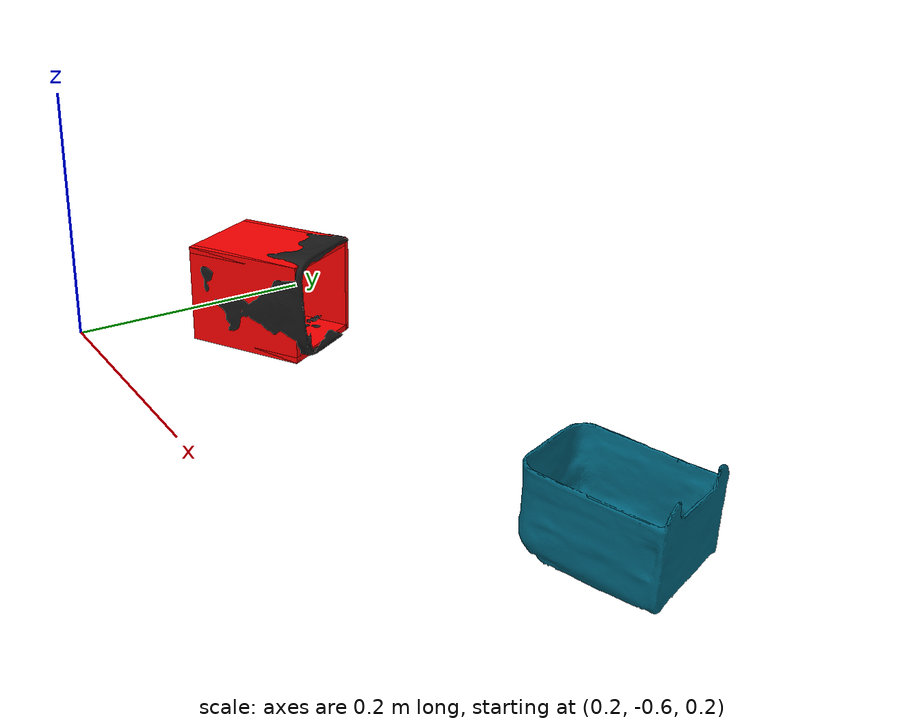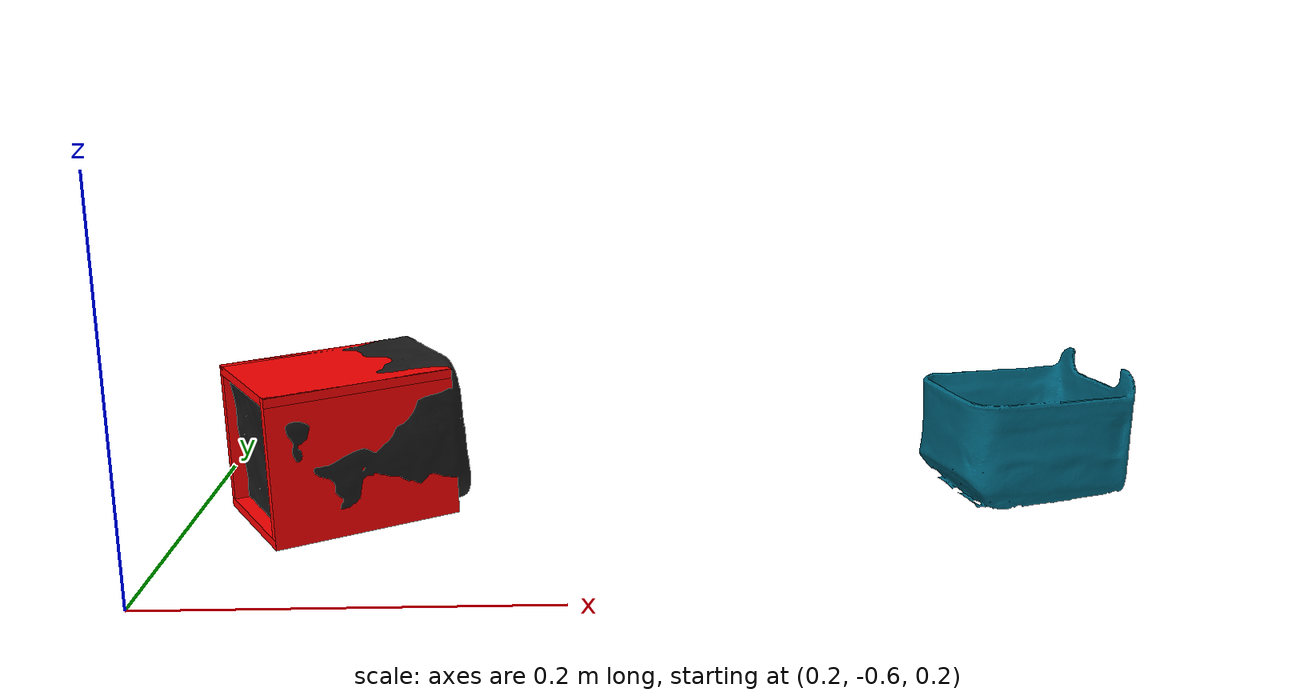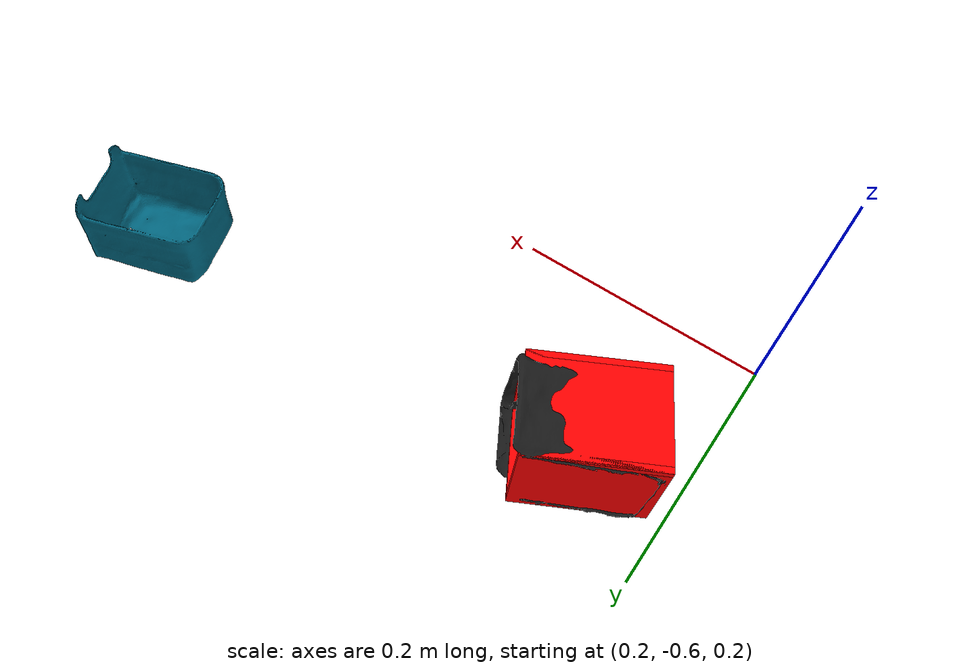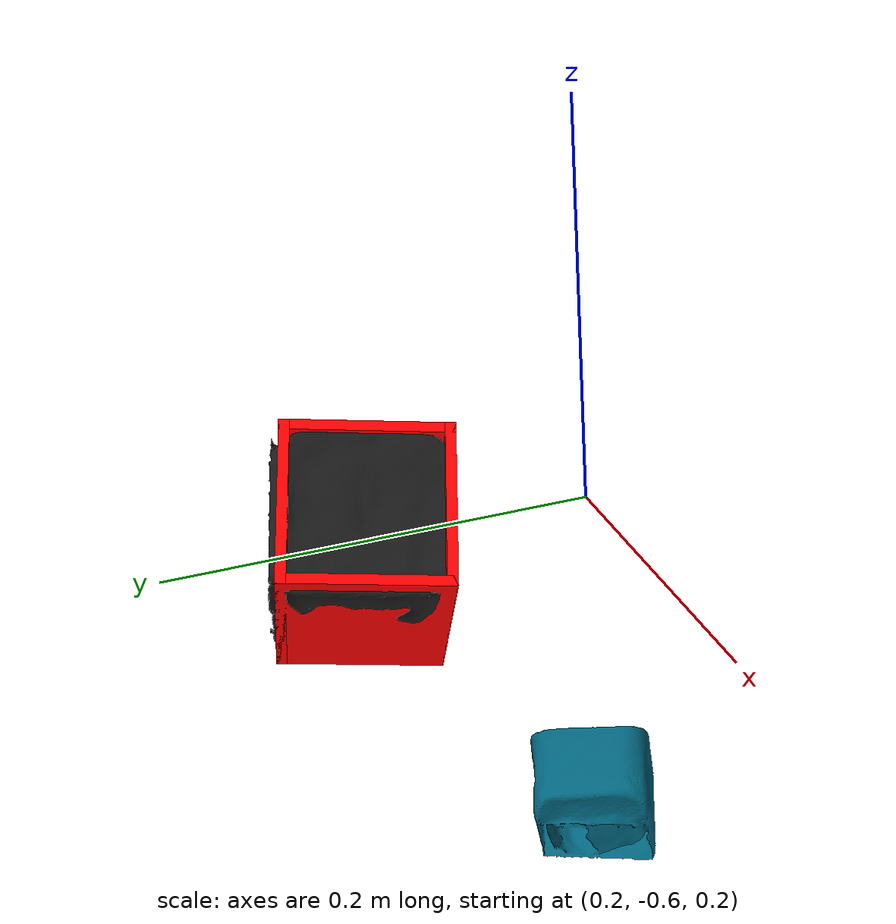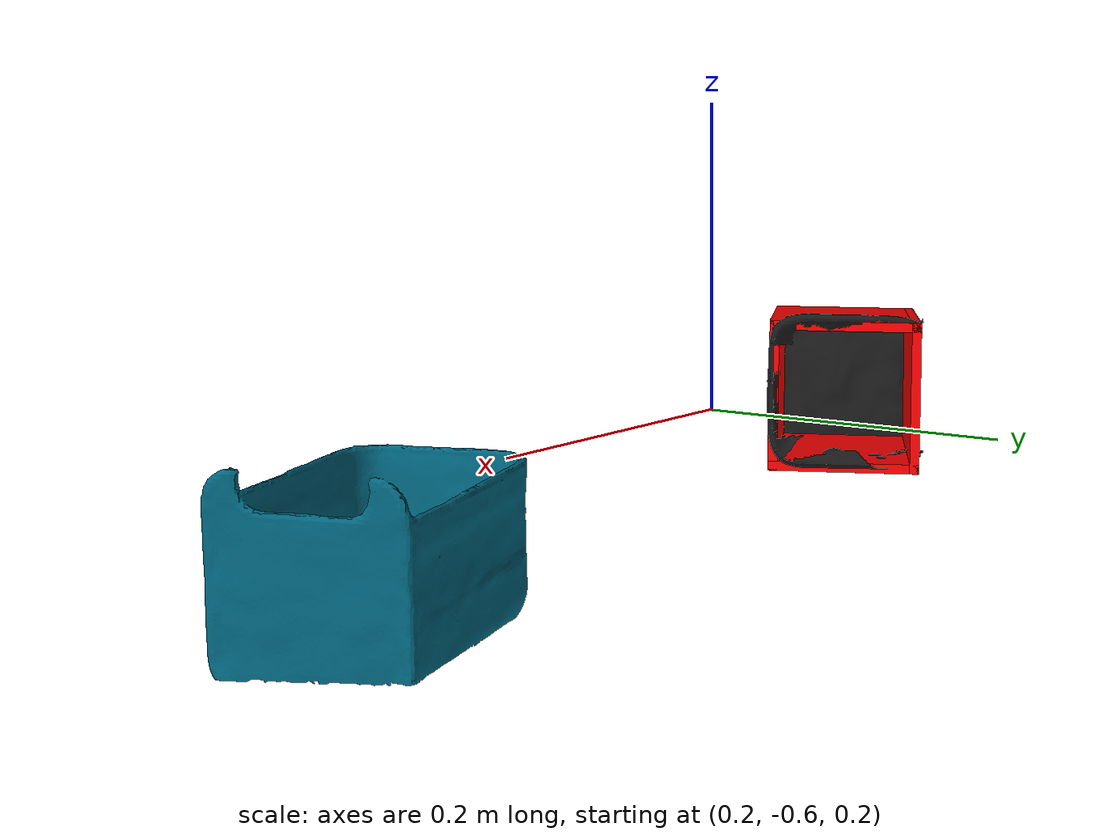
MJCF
<mujoco model="graspable_objects">
  <compiler
      meshdir=""
      angle="radian"
      coordinate="local"
      strippath="false"
      discardvisual="false"
      inertiafromgeom="true" />

  <option gravity="0 0 -9.81" integrator="RK4" timestep="0.001"
          cone="pyramidal" impratio="5" tolerance="1e-8">
    <flag warmstart="enable"/>
  </option>

  <asset>
    <mesh name="draw1" file="meshes/Draw/draw1.stl"/>
    <mesh name="draw2" file="meshes/Draw/draw2.stl"/>
    <material name="rubber" rgba="0.0 0.4 0.5 1"/>
  </asset>

  <default>
    <!-- 物体默认属性：高摩擦系数 -->
    <geom friction="2.5 1 1"
          solref="0.002 1"
          solimp="0.95 0.99 0.001"
          condim="4"
          contype="1"
          conaffinity="1"/>
  </default>

  <worldbody>

    <!-- draw1: Movable object with proper inertial properties -->
    <body name="draw1" pos="0.613 -0.478 0.196" quat="0.987964 0.003288 0.003636 0.154607">
      <joint type="free" damping="0.5" armature="0.001"/>
      <inertial pos="0 0 0" mass="0.02" diaginertia="0.0001 0.0001 0.0001"/>
      <geom name="draw1_visual_geom" type="mesh" mesh="draw1" material="rubber" rgba="0.0 0.4 0.5 1" />
      <geom name="draw1_collision_geom" type="box"
        pos="0.05 0.035 0.025" quat="1 0 0 0" size="0.048 0.034 0.024" friction="2.5 0.1 0.005" solref="0.002 1" solimp="0.95 0.99 0.001" condim="3"
        rgba="1 0 0 0"/>
    </body>

    <!-- draw2: Static object (no joint), with inertial for stability -->
    <body name="draw2" pos="0.25 -0.521 0.196" quat="0.365226 0.351452 0.607535 0.611549">
      <joint type="free" damping="0.5" armature="0.001"/>
      <inertial pos="0 0 0" mass="0.02" diaginertia="0.0001 0.0001 0.0001"/>
      <geom name="draw2_visual_geom" type="mesh" mesh="draw2" material="rubber" rgba="0.1 0.1 0.1 1"
        contype="0" conaffinity="0" group="1"/>
      <geom name="draw2_collision_1" type="box"
        pos="0.0025 0.04 0.05" quat="1 0 0 0" size="0.0025 0.04 0.05" friction="2.5 0.1 0.005" solref="0.002 1" solimp="0.95 0.99 0.001" condim="3"
        rgba="1 0 0 1"/>
      <geom name="draw2_collision_2" type="box"
        pos="0.0775 0.04 0.05" quat="1 0 0 0" size="0.0025 0.04 0.05" friction="2.5 0.1 0.005" solref="0.002 1" solimp="0.95 0.99 0.001" condim="3"
        rgba="1 0 0 1"/>
      <geom name="draw2_collision_3" type="box"
        pos="0.04 0.0775 0.05" quat="1 0 0 0" size="0.04 0.0025 0.05" friction="2.5 0.1 0.005" solref="0.002 1" solimp="0.95 0.99 0.001" condim="3"
        rgba="1 0 0 1"/>
      <geom name="draw2_collision_4" type="box"
        pos="0.04 0.0025 0.05" quat="1 0 0 0" size="0.04 0.0025 0.05" friction="2.5 0.1 0.005" solref="0.002 1" solimp="0.95 0.99 0.001" condim="3"
        rgba="1 0 0 1"/>
    </body>

  </worldbody>
</mujoco>
